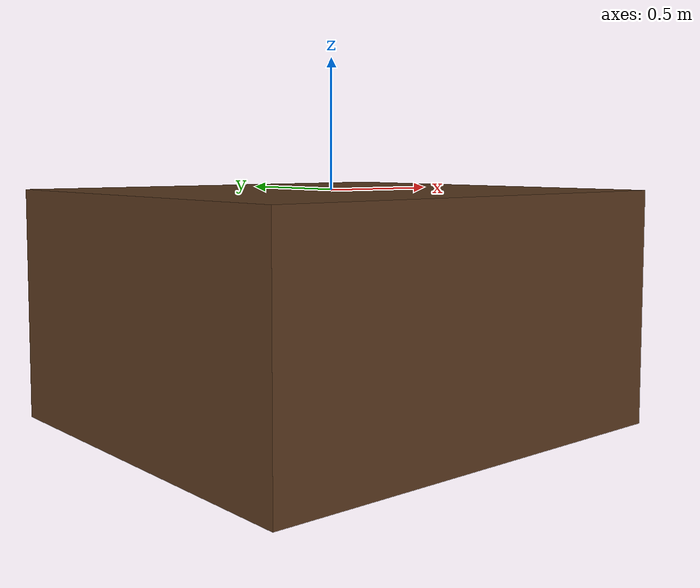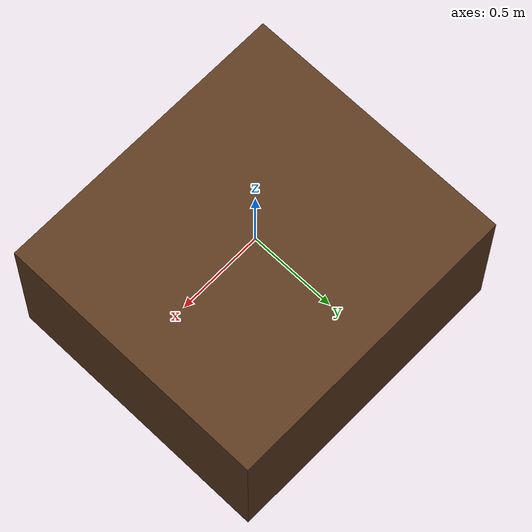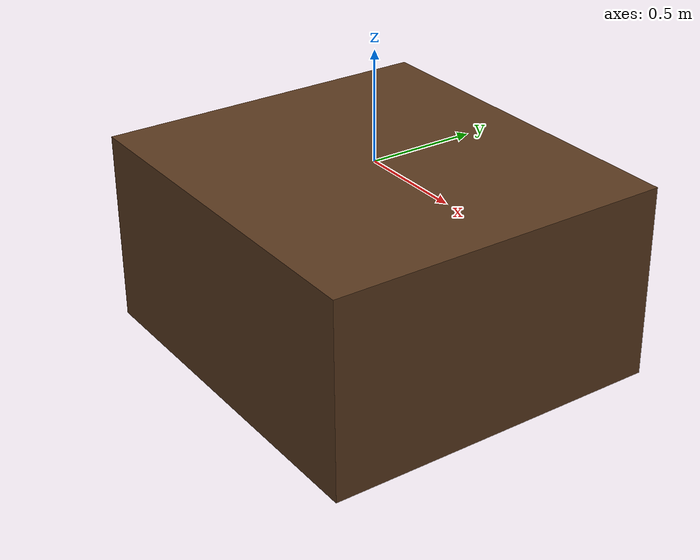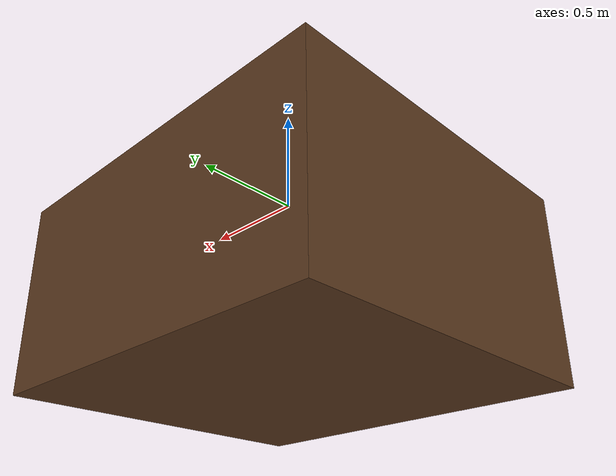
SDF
<?xml version="1.0" ?>
<sdf version="1.9">
  <model name="bar_counter">
    <static>true</static>
    <link name="counter_link">
      <visual name="counter_visual">
        <pose>0 0 -0.45 0 0 0</pose>
        <geometry>
          <box>
            <size>1.76 1.6 0.9</size>
          </box>
        </geometry>
        <material>
          <ambient>0.25 0.15 0.08 1</ambient>
          <diffuse>0.35 0.22 0.12 1</diffuse>
          <specular>0.2 0.2 0.2 1</specular>
        </material>
      </visual>

      <collision name="counter_collision">
        <pose>0 0 -0.45 0 0 0</pose>
        <geometry>
          <box>
            <size>1.76 1.6 0.9</size>
          </box>
        </geometry>
        <surface>
          <friction>
            <ode>
              <mu>0.8</mu>
              <mu2>0.8</mu2>
            </ode>
          </friction>
        </surface>
      </collision>
    </link>
  </model>
</sdf>
